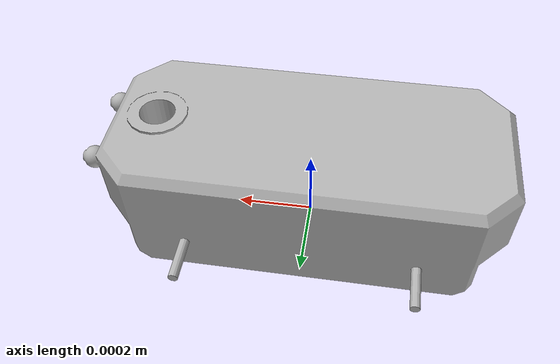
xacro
<?xml version="1.0" ?>
<robot name="robot1" xmlns:xacro="http://www.ros.org/wiki/xacro">

<xacro:include filename="$(find robot1_description)/urdf/materials.xacro" />
<xacro:include filename="$(find robot1_description)/urdf/robot1.trans" />
<xacro:include filename="$(find robot1_description)/urdf/robot1.gazebo" />
<link name="base_link">
  <inertial>
    <origin xyz="0.1885168718842284 0.01794608502661704 0.04458508619630574" rpy="0 0 0"/>
    <mass value="0.163683836854321"/>
    <inertia ixx="6.4e-05" iyy="0.000406" izz="0.000375" ixy="1e-06" iyz="0.0" ixz="-0.0"/>
  </inertial>
  <visual>
    <origin xyz="0 0 0" rpy="0 0 0"/>
    <geometry>
      <mesh filename="file://$(find robot1_description)/meshes/base_link.stl" scale="0.001 0.001 0.001"/>
    </geometry>
    <material name="silver"/>
  </visual>
  <collision>
    <origin xyz="0 0 0" rpy="0 0 0"/>
    <geometry>
      <mesh filename="file://$(find robot1_description)/meshes/base_link.stl" scale="0.001 0.001 0.001"/>
    </geometry>
  </collision>
</link>

</robot>

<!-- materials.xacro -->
<robot name="robot1" xmlns:xacro="http://www.ros.org/wiki/xacro" >

<material name="silver">
  <color rgba="0.700 0.700 0.700 1.000"/>
</material>

</robot>

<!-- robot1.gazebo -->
<robot name="robot1" xmlns:xacro="http://www.ros.org/wiki/xacro" >

<xacro:property name="body_color" value="Gazebo/Silver" />

<gazebo>
  <plugin name="control" filename="libgazebo_ros_control.so"/>
</gazebo>
<gazebo reference="base_link">
  <material>${body_color}</material>
  <mu1>0.2</mu1>
  <mu2>0.2</mu2>
  <self_collide>true</self_collide>
  <gravity>true</gravity>
</gazebo>

</robot>
